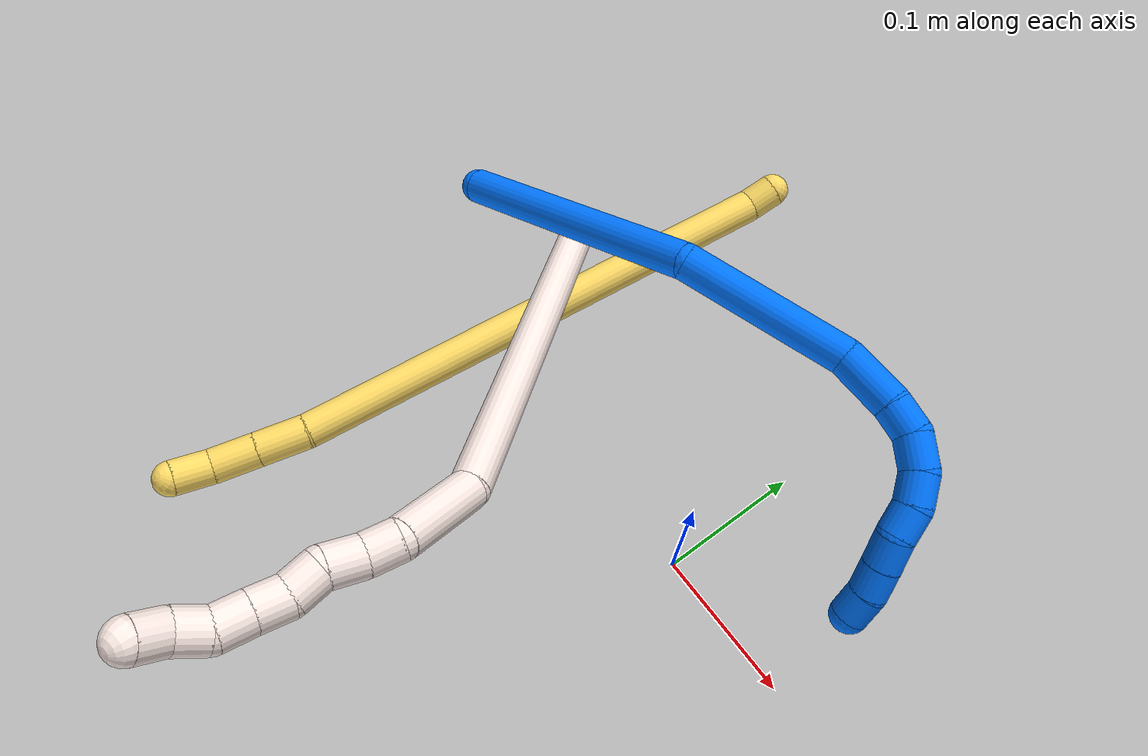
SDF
<sdf version="1.7">
 <world name="default">
  <model name="5">
   <static>0</static>
   <link name="5">
    <collision name="collision-cylinder-e_1_1_4">
     <pose>0.000906 -0.010615 -0.00273 1.8225 0.082507 0.106369</pose>
     <geometry><cylinder><radius>0.0125</radius><length>0.021995</length></cylinder></geometry>
     <surface>
      <friction><ode><mu>1.16</mu><mu2>1.16</mu2><slip1>0</slip1><slip2>0</slip2></ode></friction>
      <contact><ode><kp>1e+06</kp><kd>1</kd><max_vel>0</max_vel><min_depth>0.001</min_depth></ode></contact>
     </surface>
    </collision>
    <visual name="visual-cylinder-e_1_1_4">
     <pose>0.000906 -0.010615 -0.00273 1.8225 0.082507 0.106369</pose>
     <geometry><cylinder><radius>0.0125</radius><length>0.021995</length></cylinder></geometry>
     <material><ambient>1 0.858824 0.4 1</ambient></material>
    </visual>
    <collision name="collision-cylinder-e_2_4_5">
     <pose>0.004611 -0.181781 -0.108337 2.14066 0.014673 0.026827</pose>
     <geometry><cylinder><radius>0.0125</radius><length>0.38141</length></cylinder></geometry>
     <surface>
      <friction><ode><mu>1.16</mu><mu2>1.16</mu2><slip1>0</slip1><slip2>0</slip2></ode></friction>
      <contact><ode><kp>1e+06</kp><kd>1</kd><max_vel>0</max_vel><min_depth>0.001</min_depth></ode></contact>
     </surface>
    </collision>
    <visual name="visual-cylinder-e_2_4_5">
     <pose>0.004611 -0.181781 -0.108337 2.14066 0.014673 0.026827</pose>
     <geometry><cylinder><radius>0.0125</radius><length>0.38141</length></cylinder></geometry>
     <material><ambient>1 0.858824 0.4 1</ambient></material>
    </visual>
    <collision name="collision-cylinder-e_3_5_6">
     <pose>0.010359 -0.357261 -0.220495 2.12696 0.166275 0.297617</pose>
     <geometry><cylinder><radius>0.0125</radius><length>0.035647</length></cylinder></geometry>
     <surface>
      <friction><ode><mu>1.16</mu><mu2>1.16</mu2><slip1>0</slip1><slip2>0</slip2></ode></friction>
      <contact><ode><kp>1e+06</kp><kd>1</kd><max_vel>0</max_vel><min_depth>0.001</min_depth></ode></contact>
     </surface>
    </collision>
    <visual name="visual-cylinder-e_3_5_6">
     <pose>0.010359 -0.357261 -0.220495 2.12696 0.166275 0.297617</pose>
     <geometry><cylinder><radius>0.0125</radius><length>0.035647</length></cylinder></geometry>
     <material><ambient>1 0.858824 0.4 1</ambient></material>
    </visual>
    <collision name="collision-cylinder-e_4_6_7">
     <pose>0.016038 -0.385995 -0.238359 2.12709 0.166327 0.297755</pose>
     <geometry><cylinder><radius>0.0125</radius><length>0.032969</length></cylinder></geometry>
     <surface>
      <friction><ode><mu>1.16</mu><mu2>1.16</mu2><slip1>0</slip1><slip2>0</slip2></ode></friction>
      <contact><ode><kp>1e+06</kp><kd>1</kd><max_vel>0</max_vel><min_depth>0.001</min_depth></ode></contact>
     </surface>
    </collision>
    <visual name="visual-cylinder-e_4_6_7">
     <pose>0.016038 -0.385995 -0.238359 2.12709 0.166327 0.297755</pose>
     <geometry><cylinder><radius>0.0125</radius><length>0.032969</length></cylinder></geometry>
     <material><ambient>1 0.858824 0.4 1</ambient></material>
    </visual>
    <collision name="collision-cylinder-e_5_7_2">
     <pose>0.019693 -0.409002 -0.25744 2.42183 0.066238 0.175653</pose>
     <geometry><cylinder><radius>0.0125</radius><length>0.027979</length></cylinder></geometry>
     <surface>
      <friction><ode><mu>1.16</mu><mu2>1.16</mu2><slip1>0</slip1><slip2>0</slip2></ode></friction>
      <contact><ode><kp>1e+06</kp><kd>1</kd><max_vel>0</max_vel><min_depth>0.001</min_depth></ode></contact>
     </surface>
    </collision>
    <visual name="visual-cylinder-e_5_7_2">
     <pose>0.019693 -0.409002 -0.25744 2.42183 0.066238 0.175653</pose>
     <geometry><cylinder><radius>0.0125</radius><length>0.027979</length></cylinder></geometry>
     <material><ambient>1 0.858824 0.4 1</ambient></material>
    </visual>
    <collision name="collision-sphere-2">
     <pose>0.020619 -0.418204 -0.267936 0 -0 0</pose>
     <geometry><sphere><radius>0.0125</radius></sphere></geometry>
     <surface>
      <friction><ode><mu>1.16</mu><mu2>1.16</mu2><slip1>0</slip1><slip2>0</slip2></ode></friction>
      <contact><ode><kp>1e+06</kp><kd>1</kd><max_vel>0</max_vel><min_depth>0.001</min_depth></ode></contact>
     </surface>
    </collision>
    <visual name="visual-sphere-2">
     <pose>0.020619 -0.418204 -0.267936 0 -0 0</pose>
     <geometry><sphere><radius>0.0125</radius></sphere></geometry>
     <material><ambient>1 0.858824 0.4 1</ambient></material>
    </visual>
    <collision name="collision-sphere-7">
     <pose>0.018767 -0.399801 -0.246943 0 -0 0</pose>
     <geometry><sphere><radius>0.0125</radius></sphere></geometry>
     <surface>
      <friction><ode><mu>1.16</mu><mu2>1.16</mu2><slip1>0</slip1><slip2>0</slip2></ode></friction>
      <contact><ode><kp>1e+06</kp><kd>1</kd><max_vel>0</max_vel><min_depth>0.001</min_depth></ode></contact>
     </surface>
    </collision>
    <visual name="visual-sphere-7">
     <pose>0.018767 -0.399801 -0.246943 0 -0 0</pose>
     <geometry><sphere><radius>0.0125</radius></sphere></geometry>
     <material><ambient>1 0.858824 0.4 1</ambient></material>
    </visual>
    <collision name="collision-sphere-6">
     <pose>0.013309 -0.37219 -0.229774 0 -0 0</pose>
     <geometry><sphere><radius>0.0125</radius></sphere></geometry>
     <surface>
      <friction><ode><mu>1.16</mu><mu2>1.16</mu2><slip1>0</slip1><slip2>0</slip2></ode></friction>
      <contact><ode><kp>1e+06</kp><kd>1</kd><max_vel>0</max_vel><min_depth>0.001</min_depth></ode></contact>
     </surface>
    </collision>
    <visual name="visual-sphere-6">
     <pose>0.013309 -0.37219 -0.229774 0 -0 0</pose>
     <geometry><sphere><radius>0.0125</radius></sphere></geometry>
     <material><ambient>1 0.858824 0.4 1</ambient></material>
    </visual>
    <collision name="collision-sphere-5">
     <pose>0.007409 -0.342333 -0.211215 0 -0 0</pose>
     <geometry><sphere><radius>0.0125</radius></sphere></geometry>
     <surface>
      <friction><ode><mu>1.16</mu><mu2>1.16</mu2><slip1>0</slip1><slip2>0</slip2></ode></friction>
      <contact><ode><kp>1e+06</kp><kd>1</kd><max_vel>0</max_vel><min_depth>0.001</min_depth></ode></contact>
     </surface>
    </collision>
    <visual name="visual-sphere-5">
     <pose>0.007409 -0.342333 -0.211215 0 -0 0</pose>
     <geometry><sphere><radius>0.0125</radius></sphere></geometry>
     <material><ambient>1 0.858824 0.4 1</ambient></material>
    </visual>
    <collision name="collision-sphere-1">
     <geometry><sphere><radius>0.0125</radius></sphere></geometry>
     <surface>
      <friction><ode><mu>1.16</mu><mu2>1.16</mu2><slip1>0</slip1><slip2>0</slip2></ode></friction>
      <contact><ode><kp>1e+06</kp><kd>1</kd><max_vel>0</max_vel><min_depth>0.001</min_depth></ode></contact>
     </surface>
    </collision>
    <visual name="visual-sphere-1">
     <geometry><sphere><radius>0.0125</radius></sphere></geometry>
     <material><ambient>1 0.858824 0.4 1</ambient></material>
    </visual>
    <collision name="collision-sphere-4">
     <pose>0.001813 -0.02123 -0.005459 0 -0 0</pose>
     <geometry><sphere><radius>0.0125</radius></sphere></geometry>
     <surface>
      <friction><ode><mu>1.16</mu><mu2>1.16</mu2><slip1>0</slip1><slip2>0</slip2></ode></friction>
      <contact><ode><kp>1e+06</kp><kd>1</kd><max_vel>0</max_vel><min_depth>0.001</min_depth></ode></contact>
     </surface>
    </collision>
    <visual name="visual-sphere-4">
     <pose>0.001813 -0.02123 -0.005459 0 -0 0</pose>
     <geometry><sphere><radius>0.0125</radius></sphere></geometry>
     <material><ambient>1 0.858824 0.4 1</ambient></material>
    </visual>
    <inertial>
     <pose>0.006455 -0.212942 -0.128604 0 -0 0</pose>
     <mass>0.5</mass>
     <inertia>
      <ixx>0.004779</ixx>
      <ixy>0</ixy>
      <ixz>0</ixz>
      <iyy>-0.002412</iyy>
      <iyz>0</iyz>
      <izz>0.003826</izz>
     </inertia>
    </inertial>
   </link>
   <pose>-0.184909 0.252121 0.018366 2.57707 0.079618 3.06748</pose>
  </model>
  <model name="11">
   <static>0</static>
   <link name="11">
    <collision name="collision-cylinder-e_1_1_4">
     <pose>0.056953 -0.025641 0.135526 0.186986 0.391589 0.03719</pose>
     <geometry><cylinder><radius>0.0125</radius><length>0.298451</length></cylinder></geometry>
     <surface>
      <friction><ode><mu>1.16</mu><mu2>1.16</mu2><slip1>0</slip1><slip2>0</slip2></ode></friction>
      <contact><ode><kp>1e+06</kp><kd>1</kd><max_vel>0</max_vel><min_depth>0.001</min_depth></ode></contact>
     </surface>
    </collision>
    <visual name="visual-cylinder-e_1_1_4">
     <pose>0.056953 -0.025641 0.135526 0.186986 0.391589 0.03719</pose>
     <geometry><cylinder><radius>0.0125</radius><length>0.298451</length></cylinder></geometry>
     <material><ambient>1 0.933333 0.909804 1</ambient></material>
    </visual>
    <collision name="collision-cylinder-e_2_4_5">
     <pose>0.113695 -0.05337 0.299419 0.073474 -0.007432 -0.000273</pose>
     <geometry><cylinder><radius>0.0125</radius><length>0.056891</length></cylinder></geometry>
     <surface>
      <friction><ode><mu>1.16</mu><mu2>1.16</mu2><slip1>0</slip1><slip2>0</slip2></ode></friction>
      <contact><ode><kp>1e+06</kp><kd>1</kd><max_vel>0</max_vel><min_depth>0.001</min_depth></ode></contact>
     </surface>
    </collision>
    <visual name="visual-cylinder-e_2_4_5">
     <pose>0.113695 -0.05337 0.299419 0.073474 -0.007432 -0.000273</pose>
     <geometry><cylinder><radius>0.0125</radius><length>0.056891</length></cylinder></geometry>
     <material><ambient>1 0.933333 0.909804 1</ambient></material>
    </visual>
    <collision name="collision-cylinder-e_3_5_6">
     <pose>0.109235 -0.059191 0.336642 0.398969 -0.416296 -0.085349</pose>
     <geometry><cylinder><radius>0.0125</radius><length>0.021013</length></cylinder></geometry>
     <surface>
      <friction><ode><mu>1.16</mu><mu2>1.16</mu2><slip1>0</slip1><slip2>0</slip2></ode></friction>
      <contact><ode><kp>1e+06</kp><kd>1</kd><max_vel>0</max_vel><min_depth>0.001</min_depth></ode></contact>
     </surface>
    </collision>
    <visual name="visual-cylinder-e_3_5_6">
     <pose>0.109235 -0.059191 0.336642 0.398969 -0.416296 -0.085349</pose>
     <geometry><cylinder><radius>0.0125</radius><length>0.021013</length></cylinder></geometry>
     <material><ambient>1 0.933333 0.909804 1</ambient></material>
    </visual>
    <collision name="collision-cylinder-e_4_6_7">
     <pose>0.100458 -0.063843 0.356195 0.085723 -0.399049 -0.017345</pose>
     <geometry><cylinder><radius>0.0125</radius><length>0.023307</length></cylinder></geometry>
     <surface>
      <friction><ode><mu>1.16</mu><mu2>1.16</mu2><slip1>0</slip1><slip2>0</slip2></ode></friction>
      <contact><ode><kp>1e+06</kp><kd>1</kd><max_vel>0</max_vel><min_depth>0.001</min_depth></ode></contact>
     </surface>
    </collision>
    <visual name="visual-cylinder-e_4_6_7">
     <pose>0.100458 -0.063843 0.356195 0.085723 -0.399049 -0.017345</pose>
     <geometry><cylinder><radius>0.0125</radius><length>0.023307</length></cylinder></geometry>
     <material><ambient>1 0.933333 0.909804 1</ambient></material>
    </visual>
    <collision name="collision-cylinder-e_5_7_8">
     <pose>0.094512 -0.069599 0.375592 0.507423 -0.141586 -0.03677</pose>
     <geometry><cylinder><radius>0.0125</radius><length>0.020107</length></cylinder></geometry>
     <surface>
      <friction><ode><mu>1.16</mu><mu2>1.16</mu2><slip1>0</slip1><slip2>0</slip2></ode></friction>
      <contact><ode><kp>1e+06</kp><kd>1</kd><max_vel>0</max_vel><min_depth>0.001</min_depth></ode></contact>
     </surface>
    </collision>
    <visual name="visual-cylinder-e_5_7_8">
     <pose>0.094512 -0.069599 0.375592 0.507423 -0.141586 -0.03677</pose>
     <geometry><cylinder><radius>0.0125</radius><length>0.020107</length></cylinder></geometry>
     <material><ambient>1 0.933333 0.909804 1</ambient></material>
    </visual>
    <collision name="collision-cylinder-e_6_8_9">
     <pose>0.089602 -0.076604 0.393455 0.2324 -0.354958 -0.041867</pose>
     <geometry><cylinder><radius>0.0125</radius><length>0.020087</length></cylinder></geometry>
     <surface>
      <friction><ode><mu>1.16</mu><mu2>1.16</mu2><slip1>0</slip1><slip2>0</slip2></ode></friction>
      <contact><ode><kp>1e+06</kp><kd>1</kd><max_vel>0</max_vel><min_depth>0.001</min_depth></ode></contact>
     </surface>
    </collision>
    <visual name="visual-cylinder-e_6_8_9">
     <pose>0.089602 -0.076604 0.393455 0.2324 -0.354958 -0.041867</pose>
     <geometry><cylinder><radius>0.0125</radius><length>0.020087</length></cylinder></geometry>
     <material><ambient>1 0.933333 0.909804 1</ambient></material>
    </visual>
    <collision name="collision-cylinder-e_7_9_10">
     <pose>0.083258 -0.080727 0.412058 0.204132 -0.287844 -0.029685</pose>
     <geometry><cylinder><radius>0.0125</radius><length>0.020105</length></cylinder></geometry>
     <surface>
      <friction><ode><mu>1.16</mu><mu2>1.16</mu2><slip1>0</slip1><slip2>0</slip2></ode></friction>
      <contact><ode><kp>1e+06</kp><kd>1</kd><max_vel>0</max_vel><min_depth>0.001</min_depth></ode></contact>
     </surface>
    </collision>
    <visual name="visual-cylinder-e_7_9_10">
     <pose>0.083258 -0.080727 0.412058 0.204132 -0.287844 -0.029685</pose>
     <geometry><cylinder><radius>0.0125</radius><length>0.020105</length></cylinder></geometry>
     <material><ambient>1 0.933333 0.909804 1</ambient></material>
    </visual>
    <collision name="collision-cylinder-e_8_10_11">
     <pose>0.074562 -0.081698 0.429557 -0.121426 -0.623706 0.039187</pose>
     <geometry><cylinder><radius>0.0125</radius><length>0.020007</length></cylinder></geometry>
     <surface>
      <friction><ode><mu>1.16</mu><mu2>1.16</mu2><slip1>0</slip1><slip2>0</slip2></ode></friction>
      <contact><ode><kp>1e+06</kp><kd>1</kd><max_vel>0</max_vel><min_depth>0.001</min_depth></ode></contact>
     </surface>
    </collision>
    <visual name="visual-cylinder-e_8_10_11">
     <pose>0.074562 -0.081698 0.429557 -0.121426 -0.623706 0.039187</pose>
     <geometry><cylinder><radius>0.0125</radius><length>0.020007</length></cylinder></geometry>
     <material><ambient>1 0.933333 0.909804 1</ambient></material>
    </visual>
    <collision name="collision-cylinder-e_9_11_2">
     <pose>0.066191 -0.078823 0.447122 -0.196399 -0.255194 0.025277</pose>
     <geometry><cylinder><radius>0.0125</radius><length>0.020031</length></cylinder></geometry>
     <surface>
      <friction><ode><mu>1.16</mu><mu2>1.16</mu2><slip1>0</slip1><slip2>0</slip2></ode></friction>
      <contact><ode><kp>1e+06</kp><kd>1</kd><max_vel>0</max_vel><min_depth>0.001</min_depth></ode></contact>
     </surface>
    </collision>
    <visual name="visual-cylinder-e_9_11_2">
     <pose>0.066191 -0.078823 0.447122 -0.196399 -0.255194 0.025277</pose>
     <geometry><cylinder><radius>0.0125</radius><length>0.020031</length></cylinder></geometry>
     <material><ambient>1 0.933333 0.909804 1</ambient></material>
    </visual>
    <collision name="collision-sphere-2">
     <pose>0.063663 -0.076932 0.456627 0 -0 0</pose>
     <geometry><sphere><radius>0.0125</radius></sphere></geometry>
     <surface>
      <friction><ode><mu>1.16</mu><mu2>1.16</mu2><slip1>0</slip1><slip2>0</slip2></ode></friction>
      <contact><ode><kp>1e+06</kp><kd>1</kd><max_vel>0</max_vel><min_depth>0.001</min_depth></ode></contact>
     </surface>
    </collision>
    <visual name="visual-sphere-2">
     <pose>0.063663 -0.076932 0.456627 0 -0 0</pose>
     <geometry><sphere><radius>0.0125</radius></sphere></geometry>
     <material><ambient>1 0.933333 0.909804 1</ambient></material>
    </visual>
    <collision name="collision-sphere-11">
     <pose>0.068719 -0.080714 0.437617 0 -0 0</pose>
     <geometry><sphere><radius>0.0125</radius></sphere></geometry>
     <surface>
      <friction><ode><mu>1.16</mu><mu2>1.16</mu2><slip1>0</slip1><slip2>0</slip2></ode></friction>
      <contact><ode><kp>1e+06</kp><kd>1</kd><max_vel>0</max_vel><min_depth>0.001</min_depth></ode></contact>
     </surface>
    </collision>
    <visual name="visual-sphere-11">
     <pose>0.068719 -0.080714 0.437617 0 -0 0</pose>
     <geometry><sphere><radius>0.0125</radius></sphere></geometry>
     <material><ambient>1 0.933333 0.909804 1</ambient></material>
    </visual>
    <collision name="collision-sphere-10">
     <pose>0.080404 -0.082681 0.421497 0 -0 0</pose>
     <geometry><sphere><radius>0.0125</radius></sphere></geometry>
     <surface>
      <friction><ode><mu>1.16</mu><mu2>1.16</mu2><slip1>0</slip1><slip2>0</slip2></ode></friction>
      <contact><ode><kp>1e+06</kp><kd>1</kd><max_vel>0</max_vel><min_depth>0.001</min_depth></ode></contact>
     </surface>
    </collision>
    <visual name="visual-sphere-10">
     <pose>0.080404 -0.082681 0.421497 0 -0 0</pose>
     <geometry><sphere><radius>0.0125</radius></sphere></geometry>
     <material><ambient>1 0.933333 0.909804 1</ambient></material>
    </visual>
    <collision name="collision-sphere-9">
     <pose>0.086112 -0.078773 0.40262 0 -0 0</pose>
     <geometry><sphere><radius>0.0125</radius></sphere></geometry>
     <surface>
      <friction><ode><mu>1.16</mu><mu2>1.16</mu2><slip1>0</slip1><slip2>0</slip2></ode></friction>
      <contact><ode><kp>1e+06</kp><kd>1</kd><max_vel>0</max_vel><min_depth>0.001</min_depth></ode></contact>
     </surface>
    </collision>
    <visual name="visual-sphere-9">
     <pose>0.086112 -0.078773 0.40262 0 -0 0</pose>
     <geometry><sphere><radius>0.0125</radius></sphere></geometry>
     <material><ambient>1 0.933333 0.909804 1</ambient></material>
    </visual>
    <collision name="collision-sphere-4">
     <pose>0.113906 -0.051282 0.271051 0 -0 0</pose>
     <geometry><sphere><radius>0.0125</radius></sphere></geometry>
     <surface>
      <friction><ode><mu>1.16</mu><mu2>1.16</mu2><slip1>0</slip1><slip2>0</slip2></ode></friction>
      <contact><ode><kp>1e+06</kp><kd>1</kd><max_vel>0</max_vel><min_depth>0.001</min_depth></ode></contact>
     </surface>
    </collision>
    <visual name="visual-sphere-4">
     <pose>0.113906 -0.051282 0.271051 0 -0 0</pose>
     <geometry><sphere><radius>0.0125</radius></sphere></geometry>
     <material><ambient>1 0.933333 0.909804 1</ambient></material>
    </visual>
    <collision name="collision-sphere-1">
     <geometry><sphere><radius>0.0125</radius></sphere></geometry>
     <surface>
      <friction><ode><mu>1.16</mu><mu2>1.16</mu2><slip1>0</slip1><slip2>0</slip2></ode></friction>
      <contact><ode><kp>1e+06</kp><kd>1</kd><max_vel>0</max_vel><min_depth>0.001</min_depth></ode></contact>
     </surface>
    </collision>
    <visual name="visual-sphere-1">
     <geometry><sphere><radius>0.0125</radius></sphere></geometry>
     <material><ambient>1 0.933333 0.909804 1</ambient></material>
    </visual>
    <collision name="collision-sphere-8">
     <pose>0.093093 -0.074435 0.384291 0 -0 0</pose>
     <geometry><sphere><radius>0.0125</radius></sphere></geometry>
     <surface>
      <friction><ode><mu>1.16</mu><mu2>1.16</mu2><slip1>0</slip1><slip2>0</slip2></ode></friction>
      <contact><ode><kp>1e+06</kp><kd>1</kd><max_vel>0</max_vel><min_depth>0.001</min_depth></ode></contact>
     </surface>
    </collision>
    <visual name="visual-sphere-8">
     <pose>0.093093 -0.074435 0.384291 0 -0 0</pose>
     <geometry><sphere><radius>0.0125</radius></sphere></geometry>
     <material><ambient>1 0.933333 0.909804 1</ambient></material>
    </visual>
    <collision name="collision-sphere-5">
     <pose>0.113484 -0.055458 0.327787 0 -0 0</pose>
     <geometry><sphere><radius>0.0125</radius></sphere></geometry>
     <surface>
      <friction><ode><mu>1.16</mu><mu2>1.16</mu2><slip1>0</slip1><slip2>0</slip2></ode></friction>
      <contact><ode><kp>1e+06</kp><kd>1</kd><max_vel>0</max_vel><min_depth>0.001</min_depth></ode></contact>
     </surface>
    </collision>
    <visual name="visual-sphere-5">
     <pose>0.113484 -0.055458 0.327787 0 -0 0</pose>
     <geometry><sphere><radius>0.0125</radius></sphere></geometry>
     <material><ambient>1 0.933333 0.909804 1</ambient></material>
    </visual>
    <collision name="collision-sphere-6">
     <pose>0.104986 -0.062924 0.345496 0 -0 0</pose>
     <geometry><sphere><radius>0.0125</radius></sphere></geometry>
     <surface>
      <friction><ode><mu>1.16</mu><mu2>1.16</mu2><slip1>0</slip1><slip2>0</slip2></ode></friction>
      <contact><ode><kp>1e+06</kp><kd>1</kd><max_vel>0</max_vel><min_depth>0.001</min_depth></ode></contact>
     </surface>
    </collision>
    <visual name="visual-sphere-6">
     <pose>0.104986 -0.062924 0.345496 0 -0 0</pose>
     <geometry><sphere><radius>0.0125</radius></sphere></geometry>
     <material><ambient>1 0.933333 0.909804 1</ambient></material>
    </visual>
    <collision name="collision-sphere-7">
     <pose>0.09593 -0.064763 0.366893 0 -0 0</pose>
     <geometry><sphere><radius>0.0125</radius></sphere></geometry>
     <surface>
      <friction><ode><mu>1.16</mu><mu2>1.16</mu2><slip1>0</slip1><slip2>0</slip2></ode></friction>
      <contact><ode><kp>1e+06</kp><kd>1</kd><max_vel>0</max_vel><min_depth>0.001</min_depth></ode></contact>
     </surface>
    </collision>
    <visual name="visual-sphere-7">
     <pose>0.09593 -0.064763 0.366893 0 -0 0</pose>
     <geometry><sphere><radius>0.0125</radius></sphere></geometry>
     <material><ambient>1 0.933333 0.909804 1</ambient></material>
    </visual>
    <inertial>
     <pose>0.072589 -0.042391 0.228296 0 -0 0</pose>
     <mass>0.5</mass>
     <inertia>
      <ixx>0.002166</ixx>
      <ixy>0</ixy>
      <ixz>0</ixz>
      <iyy>0.002291</iyy>
      <iyz>0</iyz>
      <izz>-0.000425</izz>
     </inertia>
    </inertial>
   </link>
   <pose>-0.250006 0.114728 0.015789 1.02044 -0.128598 0.29582</pose>
  </model>
  <model name="14">
   <static>0</static>
   <link name="14">
    <collision name="collision-cylinder-e_1_1_4">
     <pose>-0.047977 0.030024 -0.077592 -2.77239 -0.523079 1.92337</pose>
     <geometry><cylinder><radius>0.0125</radius><length>0.192081</length></cylinder></geometry>
     <surface>
      <friction><ode><mu>1.16</mu><mu2>1.16</mu2><slip1>0</slip1><slip2>0</slip2></ode></friction>
      <contact><ode><kp>1e+06</kp><kd>1</kd><max_vel>0</max_vel><min_depth>0.001</min_depth></ode></contact>
     </surface>
    </collision>
    <visual name="visual-cylinder-e_1_1_4">
     <pose>-0.047977 0.030024 -0.077592 -2.77239 -0.523079 1.92337</pose>
     <geometry><cylinder><radius>0.0125</radius><length>0.192081</length></cylinder></geometry>
     <material><ambient>0 0.462745 1 1</ambient></material>
    </visual>
    <collision name="collision-cylinder-e_2_4_5">
     <pose>-0.104413 0.097886 -0.199508 -2.43496 -0.144136 0.386625</pose>
     <geometry><cylinder><radius>0.0125</radius><length>0.117777</length></cylinder></geometry>
     <surface>
      <friction><ode><mu>1.16</mu><mu2>1.16</mu2><slip1>0</slip1><slip2>0</slip2></ode></friction>
      <contact><ode><kp>1e+06</kp><kd>1</kd><max_vel>0</max_vel><min_depth>0.001</min_depth></ode></contact>
     </surface>
    </collision>
    <visual name="visual-cylinder-e_2_4_5">
     <pose>-0.104413 0.097886 -0.199508 -2.43496 -0.144136 0.386625</pose>
     <geometry><cylinder><radius>0.0125</radius><length>0.117777</length></cylinder></geometry>
     <material><ambient>0 0.462745 1 1</ambient></material>
    </visual>
    <collision name="collision-cylinder-e_3_5_6">
     <pose>-0.123041 0.149451 -0.255288 -2.2663 -0.517159 1.029</pose>
     <geometry><cylinder><radius>0.0125</radius><length>0.04114</length></cylinder></geometry>
     <surface>
      <friction><ode><mu>1.16</mu><mu2>1.16</mu2><slip1>0</slip1><slip2>0</slip2></ode></friction>
      <contact><ode><kp>1e+06</kp><kd>1</kd><max_vel>0</max_vel><min_depth>0.001</min_depth></ode></contact>
     </surface>
    </collision>
    <visual name="visual-cylinder-e_3_5_6">
     <pose>-0.123041 0.149451 -0.255288 -2.2663 -0.517159 1.029</pose>
     <geometry><cylinder><radius>0.0125</radius><length>0.04114</length></cylinder></geometry>
     <material><ambient>0 0.462745 1 1</ambient></material>
    </visual>
    <collision name="collision-cylinder-e_4_6_7">
     <pose>-0.138226 0.171528 -0.271236 -2.06425 -0.486555 0.78725</pose>
     <geometry><cylinder><radius>0.0125</radius><length>0.021451</length></cylinder></geometry>
     <surface>
      <friction><ode><mu>1.16</mu><mu2>1.16</mu2><slip1>0</slip1><slip2>0</slip2></ode></friction>
      <contact><ode><kp>1e+06</kp><kd>1</kd><max_vel>0</max_vel><min_depth>0.001</min_depth></ode></contact>
     </surface>
    </collision>
    <visual name="visual-cylinder-e_4_6_7">
     <pose>-0.138226 0.171528 -0.271236 -2.06425 -0.486555 0.78725</pose>
     <geometry><cylinder><radius>0.0125</radius><length>0.021451</length></cylinder></geometry>
     <material><ambient>0 0.462745 1 1</ambient></material>
    </visual>
    <collision name="collision-cylinder-e_5_7_8">
     <pose>-0.149577 0.1898 -0.276008 -1.59915 -0.568062 0.583504</pose>
     <geometry><cylinder><radius>0.0125</radius><length>0.023552</length></cylinder></geometry>
     <surface>
      <friction><ode><mu>1.16</mu><mu2>1.16</mu2><slip1>0</slip1><slip2>0</slip2></ode></friction>
      <contact><ode><kp>1e+06</kp><kd>1</kd><max_vel>0</max_vel><min_depth>0.001</min_depth></ode></contact>
     </surface>
    </collision>
    <visual name="visual-cylinder-e_5_7_8">
     <pose>-0.149577 0.1898 -0.276008 -1.59915 -0.568062 0.583504</pose>
     <geometry><cylinder><radius>0.0125</radius><length>0.023552</length></cylinder></geometry>
     <material><ambient>0 0.462745 1 1</ambient></material>
    </visual>
    <collision name="collision-cylinder-e_6_8_9">
     <pose>-0.161511 0.208196 -0.272758 -1.17595 -0.547617 0.370176</pose>
     <geometry><cylinder><radius>0.0125</radius><length>0.021505</length></cylinder></geometry>
     <surface>
      <friction><ode><mu>1.16</mu><mu2>1.16</mu2><slip1>0</slip1><slip2>0</slip2></ode></friction>
      <contact><ode><kp>1e+06</kp><kd>1</kd><max_vel>0</max_vel><min_depth>0.001</min_depth></ode></contact>
     </surface>
    </collision>
    <visual name="visual-cylinder-e_6_8_9">
     <pose>-0.161511 0.208196 -0.272758 -1.17595 -0.547617 0.370176</pose>
     <geometry><cylinder><radius>0.0125</radius><length>0.021505</length></cylinder></geometry>
     <material><ambient>0 0.462745 1 1</ambient></material>
    </visual>
    <collision name="collision-cylinder-e_7_9_10">
     <pose>-0.170835 0.223861 -0.263019 -0.858621 -0.373792 0.172707</pose>
     <geometry><cylinder><radius>0.0125</radius><length>0.020408</length></cylinder></geometry>
     <surface>
      <friction><ode><mu>1.16</mu><mu2>1.16</mu2><slip1>0</slip1><slip2>0</slip2></ode></friction>
      <contact><ode><kp>1e+06</kp><kd>1</kd><max_vel>0</max_vel><min_depth>0.001</min_depth></ode></contact>
     </surface>
    </collision>
    <visual name="visual-cylinder-e_7_9_10">
     <pose>-0.170835 0.223861 -0.263019 -0.858621 -0.373792 0.172707</pose>
     <geometry><cylinder><radius>0.0125</radius><length>0.020408</length></cylinder></geometry>
     <material><ambient>0 0.462745 1 1</ambient></material>
    </visual>
    <collision name="collision-cylinder-e_8_10_11">
     <pose>-0.175909 0.240151 -0.251372 -1.03202 -0.126461 0.071803</pose>
     <geometry><cylinder><radius>0.0125</radius><length>0.021374</length></cylinder></geometry>
     <surface>
      <friction><ode><mu>1.16</mu><mu2>1.16</mu2><slip1>0</slip1><slip2>0</slip2></ode></friction>
      <contact><ode><kp>1e+06</kp><kd>1</kd><max_vel>0</max_vel><min_depth>0.001</min_depth></ode></contact>
     </surface>
    </collision>
    <visual name="visual-cylinder-e_8_10_11">
     <pose>-0.175909 0.240151 -0.251372 -1.03202 -0.126461 0.071803</pose>
     <geometry><cylinder><radius>0.0125</radius><length>0.021374</length></cylinder></geometry>
     <material><ambient>0 0.462745 1 1</ambient></material>
    </visual>
    <collision name="collision-cylinder-e_9_11_12">
     <pose>-0.178301 0.2579 -0.240585 -1.01707 -0.102374 0.057101</pose>
     <geometry><cylinder><radius>0.0125</radius><length>0.020444</length></cylinder></geometry>
     <surface>
      <friction><ode><mu>1.16</mu><mu2>1.16</mu2><slip1>0</slip1><slip2>0</slip2></ode></friction>
      <contact><ode><kp>1e+06</kp><kd>1</kd><max_vel>0</max_vel><min_depth>0.001</min_depth></ode></contact>
     </surface>
    </collision>
    <visual name="visual-cylinder-e_9_11_12">
     <pose>-0.178301 0.2579 -0.240585 -1.01707 -0.102374 0.057101</pose>
     <geometry><cylinder><radius>0.0125</radius><length>0.020444</length></cylinder></geometry>
     <material><ambient>0 0.462745 1 1</ambient></material>
    </visual>
    <collision name="collision-cylinder-e_10_12_2">
     <pose>-0.179255 0.274115 -0.228496 -0.843008 0.009 -0.004035</pose>
     <geometry><cylinder><radius>0.0125</radius><length>0.020269</length></cylinder></geometry>
     <surface>
      <friction><ode><mu>1.16</mu><mu2>1.16</mu2><slip1>0</slip1><slip2>0</slip2></ode></friction>
      <contact><ode><kp>1e+06</kp><kd>1</kd><max_vel>0</max_vel><min_depth>0.001</min_depth></ode></contact>
     </surface>
    </collision>
    <visual name="visual-cylinder-e_10_12_2">
     <pose>-0.179255 0.274115 -0.228496 -0.843008 0.009 -0.004035</pose>
     <geometry><cylinder><radius>0.0125</radius><length>0.020269</length></cylinder></geometry>
     <material><ambient>0 0.462745 1 1</ambient></material>
    </visual>
    <collision name="collision-sphere-2">
     <pose>-0.179164 0.281682 -0.221755 0 -0 0</pose>
     <geometry><sphere><radius>0.0125</radius></sphere></geometry>
     <surface>
      <friction><ode><mu>1.16</mu><mu2>1.16</mu2><slip1>0</slip1><slip2>0</slip2></ode></friction>
      <contact><ode><kp>1e+06</kp><kd>1</kd><max_vel>0</max_vel><min_depth>0.001</min_depth></ode></contact>
     </surface>
    </collision>
    <visual name="visual-sphere-2">
     <pose>-0.179164 0.281682 -0.221755 0 -0 0</pose>
     <geometry><sphere><radius>0.0125</radius></sphere></geometry>
     <material><ambient>0 0.462745 1 1</ambient></material>
    </visual>
    <collision name="collision-sphere-12">
     <pose>-0.179346 0.266548 -0.235238 0 -0 0</pose>
     <geometry><sphere><radius>0.0125</radius></sphere></geometry>
     <surface>
      <friction><ode><mu>1.16</mu><mu2>1.16</mu2><slip1>0</slip1><slip2>0</slip2></ode></friction>
      <contact><ode><kp>1e+06</kp><kd>1</kd><max_vel>0</max_vel><min_depth>0.001</min_depth></ode></contact>
     </surface>
    </collision>
    <visual name="visual-sphere-12">
     <pose>-0.179346 0.266548 -0.235238 0 -0 0</pose>
     <geometry><sphere><radius>0.0125</radius></sphere></geometry>
     <material><ambient>0 0.462745 1 1</ambient></material>
    </visual>
    <collision name="collision-sphere-11">
     <pose>-0.177257 0.249251 -0.245932 0 -0 0</pose>
     <geometry><sphere><radius>0.0125</radius></sphere></geometry>
     <surface>
      <friction><ode><mu>1.16</mu><mu2>1.16</mu2><slip1>0</slip1><slip2>0</slip2></ode></friction>
      <contact><ode><kp>1e+06</kp><kd>1</kd><max_vel>0</max_vel><min_depth>0.001</min_depth></ode></contact>
     </surface>
    </collision>
    <visual name="visual-sphere-11">
     <pose>-0.177257 0.249251 -0.245932 0 -0 0</pose>
     <geometry><sphere><radius>0.0125</radius></sphere></geometry>
     <material><ambient>0 0.462745 1 1</ambient></material>
    </visual>
    <collision name="collision-sphere-10">
     <pose>-0.174561 0.231051 -0.256811 0 -0 0</pose>
     <geometry><sphere><radius>0.0125</radius></sphere></geometry>
     <surface>
      <friction><ode><mu>1.16</mu><mu2>1.16</mu2><slip1>0</slip1><slip2>0</slip2></ode></friction>
      <contact><ode><kp>1e+06</kp><kd>1</kd><max_vel>0</max_vel><min_depth>0.001</min_depth></ode></contact>
     </surface>
    </collision>
    <visual name="visual-sphere-10">
     <pose>-0.174561 0.231051 -0.256811 0 -0 0</pose>
     <geometry><sphere><radius>0.0125</radius></sphere></geometry>
     <material><ambient>0 0.462745 1 1</ambient></material>
    </visual>
    <collision name="collision-sphere-9">
     <pose>-0.167109 0.21667 -0.269227 0 -0 0</pose>
     <geometry><sphere><radius>0.0125</radius></sphere></geometry>
     <surface>
      <friction><ode><mu>1.16</mu><mu2>1.16</mu2><slip1>0</slip1><slip2>0</slip2></ode></friction>
      <contact><ode><kp>1e+06</kp><kd>1</kd><max_vel>0</max_vel><min_depth>0.001</min_depth></ode></contact>
     </surface>
    </collision>
    <visual name="visual-sphere-9">
     <pose>-0.167109 0.21667 -0.269227 0 -0 0</pose>
     <geometry><sphere><radius>0.0125</radius></sphere></geometry>
     <material><ambient>0 0.462745 1 1</ambient></material>
    </visual>
    <collision name="collision-sphere-4">
     <pose>-0.095954 0.060048 -0.155184 0 -0 0</pose>
     <geometry><sphere><radius>0.0125</radius></sphere></geometry>
     <surface>
      <friction><ode><mu>1.16</mu><mu2>1.16</mu2><slip1>0</slip1><slip2>0</slip2></ode></friction>
      <contact><ode><kp>1e+06</kp><kd>1</kd><max_vel>0</max_vel><min_depth>0.001</min_depth></ode></contact>
     </surface>
    </collision>
    <visual name="visual-sphere-4">
     <pose>-0.095954 0.060048 -0.155184 0 -0 0</pose>
     <geometry><sphere><radius>0.0125</radius></sphere></geometry>
     <material><ambient>0 0.462745 1 1</ambient></material>
    </visual>
    <collision name="collision-sphere-1">
     <geometry><sphere><radius>0.0125</radius></sphere></geometry>
     <surface>
      <friction><ode><mu>1.16</mu><mu2>1.16</mu2><slip1>0</slip1><slip2>0</slip2></ode></friction>
      <contact><ode><kp>1e+06</kp><kd>1</kd><max_vel>0</max_vel><min_depth>0.001</min_depth></ode></contact>
     </surface>
    </collision>
    <visual name="visual-sphere-1">
     <geometry><sphere><radius>0.0125</radius></sphere></geometry>
     <material><ambient>0 0.462745 1 1</ambient></material>
    </visual>
    <collision name="collision-sphere-8">
     <pose>-0.155912 0.199723 -0.276289 0 -0 0</pose>
     <geometry><sphere><radius>0.0125</radius></sphere></geometry>
     <surface>
      <friction><ode><mu>1.16</mu><mu2>1.16</mu2><slip1>0</slip1><slip2>0</slip2></ode></friction>
      <contact><ode><kp>1e+06</kp><kd>1</kd><max_vel>0</max_vel><min_depth>0.001</min_depth></ode></contact>
     </surface>
    </collision>
    <visual name="visual-sphere-8">
     <pose>-0.155912 0.199723 -0.276289 0 -0 0</pose>
     <geometry><sphere><radius>0.0125</radius></sphere></geometry>
     <material><ambient>0 0.462745 1 1</ambient></material>
    </visual>
    <collision name="collision-sphere-5">
     <pose>-0.112871 0.135724 -0.243831 0 -0 0</pose>
     <geometry><sphere><radius>0.0125</radius></sphere></geometry>
     <surface>
      <friction><ode><mu>1.16</mu><mu2>1.16</mu2><slip1>0</slip1><slip2>0</slip2></ode></friction>
      <contact><ode><kp>1e+06</kp><kd>1</kd><max_vel>0</max_vel><min_depth>0.001</min_depth></ode></contact>
     </surface>
    </collision>
    <visual name="visual-sphere-5">
     <pose>-0.112871 0.135724 -0.243831 0 -0 0</pose>
     <geometry><sphere><radius>0.0125</radius></sphere></geometry>
     <material><ambient>0 0.462745 1 1</ambient></material>
    </visual>
    <collision name="collision-sphere-6">
     <pose>-0.133211 0.163178 -0.266745 0 -0 0</pose>
     <geometry><sphere><radius>0.0125</radius></sphere></geometry>
     <surface>
      <friction><ode><mu>1.16</mu><mu2>1.16</mu2><slip1>0</slip1><slip2>0</slip2></ode></friction>
      <contact><ode><kp>1e+06</kp><kd>1</kd><max_vel>0</max_vel><min_depth>0.001</min_depth></ode></contact>
     </surface>
    </collision>
    <visual name="visual-sphere-6">
     <pose>-0.133211 0.163178 -0.266745 0 -0 0</pose>
     <geometry><sphere><radius>0.0125</radius></sphere></geometry>
     <material><ambient>0 0.462745 1 1</ambient></material>
    </visual>
    <collision name="collision-sphere-7">
     <pose>-0.143241 0.179878 -0.275726 0 -0 0</pose>
     <geometry><sphere><radius>0.0125</radius></sphere></geometry>
     <surface>
      <friction><ode><mu>1.16</mu><mu2>1.16</mu2><slip1>0</slip1><slip2>0</slip2></ode></friction>
      <contact><ode><kp>1e+06</kp><kd>1</kd><max_vel>0</max_vel><min_depth>0.001</min_depth></ode></contact>
     </surface>
    </collision>
    <visual name="visual-sphere-7">
     <pose>-0.143241 0.179878 -0.275726 0 -0 0</pose>
     <geometry><sphere><radius>0.0125</radius></sphere></geometry>
     <material><ambient>0 0.462745 1 1</ambient></material>
    </visual>
    <inertial>
     <pose>-0.102121 0.113202 -0.174757 0 -0 0</pose>
     <mass>0.5</mass>
     <inertia>
      <ixx>0.000496</ixx>
      <ixy>0</ixy>
      <ixz>0</ixz>
      <iyy>0.000774</iyy>
      <iyz>0</iyz>
      <izz>1.7e-05</izz>
     </inertia>
    </inertial>
   </link>
   <pose>-0.305993 0.057384 0.044919 -2.01281 0.64223 2.22247</pose>
  </model>
 </world>
</sdf>
